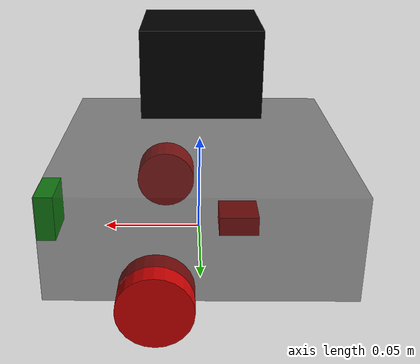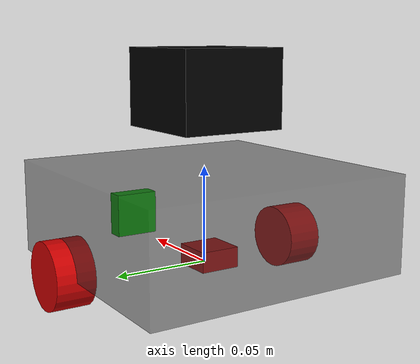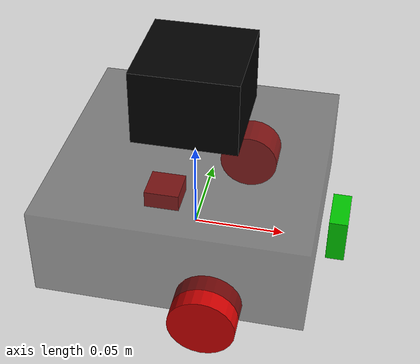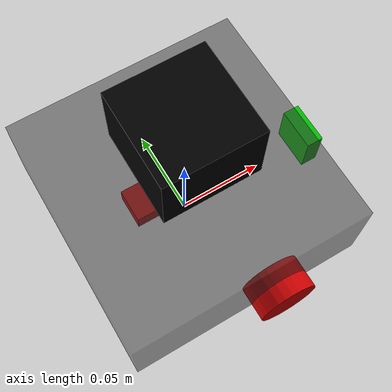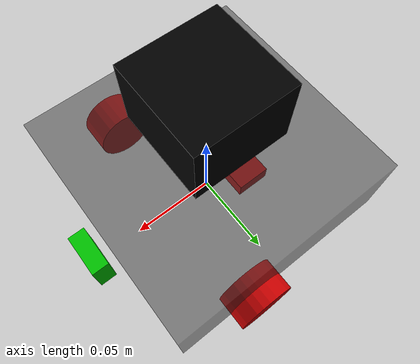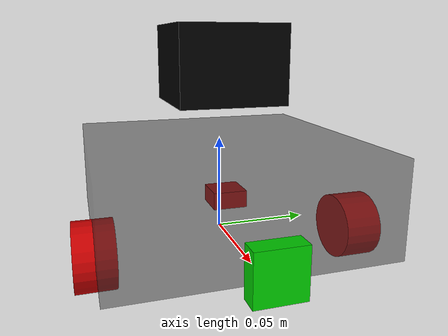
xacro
<?xml version="1.0"?>
<!-- Basic differential drive mobile base -->
<robot xmlns:xacro="http://www.ros.org/wiki/xacro" name="diffdrive_robot">
  <xacro:arg name="prefix" default="" />

  <xacro:include filename="$(find dfrobot_dc_motor_hardware)/urdf/diffbot_description.urdf.xacro" />

  <!-- Import Rviz colors -->
  <xacro:include filename="$(find dfrobot_dc_motor_hardware)/urdf/diffbot.materials.xacro" />

  <!-- Import diffbot ros2_control description -->
  <xacro:include filename="$(find dfrobot_dc_motor_hardware)/ros2_control/diffbot.ros2_control.xacro" />

  <xacro:diffbot prefix="$(arg prefix)" />

  <xacro:diffbot_ros2_control
    name="DiffBot" prefix="$(arg prefix)" />

</robot>

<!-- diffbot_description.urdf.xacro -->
<robot xmlns:xacro="http://www.ros.org/wiki/xacro">

  <xacro:macro name="diffbot" params="prefix">

  <!-- Constants for robot dimensions -->
  <xacro:property name="PI" value="3.1415926535897931"/>
  <xacro:property name="base_mass" value="0.3" /> <!-- arbitrary value for base mass -->
  <xacro:property name="base_width" value="0.14" />
  <xacro:property name="base_length" value="0.14" />
  <xacro:property name="base_height" value="0.05" />
  <xacro:property name="wheel_mass" value="0.3" /> <!-- arbitrary value for wheel mass -->
  <xacro:property name="wheel_len" value="0.020" />
  <xacro:property name="wheel_radius" value="0.0175" />
  <xacro:property name="imu_height" value="0.04" /> <!-- Height of IMU below top plate -->

  <!-- Base Link -->
  <link name="${prefix}base_link">
    <collision>
      <origin xyz="0 0 0" rpy="0 0 0"/>
      <geometry>
        <box size="${base_width} ${base_length} ${base_height}"/>
      </geometry>
    </collision>

    <visual>
      <origin xyz="0 0 ${base_height/2}" rpy="0 0 0"/>
      <geometry>
        <box size="${base_width} ${base_length} ${base_height}"/>
      </geometry>
      <material name="acrylic"/>
    </visual>

    <inertial>
      <origin xyz="0 0 0" rpy="0 0 0"/>
      <mass value="${base_mass}"/>
      <inertia
        ixx="${base_mass / 12.0 * (base_length*base_length + base_height*base_height)}" ixy="0.0" ixz="0.0"
        iyy="${base_mass / 12.0 * (base_height*base_height + base_width*base_width)}" iyz="0.0"
        izz="${base_mass / 12.0 * (base_width*base_width + base_length*base_length)}"/>
      </inertial>
    </link>

    <!-- left wheel Joint -->
    <joint name="${prefix}left_wheel_joint" type="continuous">
      <parent link="${prefix}base_link"/>
      <child link="${prefix}left_wheel"/>
      <origin xyz="0.02 ${base_width/2} 0" rpy="0 0 0"/>
      <axis xyz="0 1 0"/>
      <dynamics damping="0.2"/>
    </joint>

    <joint name="${prefix}base_footprint_joint" type="fixed">
      <parent link="${prefix}base_link"/>
      <child link="${prefix}base_footprint"/>
      <origin xyz="0 0 0" rpy="0 0 0"/>
    </joint>

    <link name="base_footprint">
    </link>

    <!-- left wheel Link -->
    <link name="${prefix}left_wheel">
      <collision>
        <origin xyz="0 0 0" rpy="${PI/2} 0 0"/>
        <geometry>
          <cylinder length="${wheel_len}" radius="${wheel_radius}"/>
        </geometry>
      </collision>

      <visual>
        <origin xyz="0 0 0" rpy="${PI/2} 0 0"/>
        <geometry>
          <cylinder length="${wheel_len}" radius="${wheel_radius}"/>
        </geometry>
        <material name="red"/>
      </visual>

      <inertial>
        <origin xyz="0 0 0" rpy="${PI/2} 0 0"/>
        <mass value="${wheel_mass}"/>
        <inertia
          ixx="${wheel_mass / 12.0 * (3*wheel_radius + wheel_len*wheel_len)}" ixy="0.0" ixz="0.0"
          iyy="${wheel_mass / 12.0 * wheel_radius*wheel_radius}" iyz="0.0"
          izz="${wheel_mass / 12.0 * wheel_radius*wheel_radius}"/>
        </inertial>
      </link>
    <!-- right wheel Joint -->
    <joint name="${prefix}right_wheel_joint" type="continuous">
      <parent link="${prefix}base_link"/>
      <child link="${prefix}right_wheel"/>
      <origin xyz="0.02 -${base_width/2} 0" rpy="0 0 0"/>
      <axis xyz="0 1 0"/>
      <dynamics damping="0.2"/>
    </joint>

    <!-- right wheel Link -->
    <link name="${prefix}right_wheel">
      <collision>
        <origin xyz="0 0 0" rpy="${PI/2} 0 0"/>
        <geometry>
          <cylinder length="${wheel_len}" radius="${wheel_radius}"/>
        </geometry>
      </collision>

      <visual>
        <origin xyz="0 0 0" rpy="${PI/2} 0 0"/>
        <geometry>
          <cylinder length="${wheel_len}" radius="${wheel_radius}"/>
        </geometry>
        <material name="red"/>
      </visual>

      <inertial>
        <origin xyz="0 0 0" rpy="${PI/2} 0 0"/>
        <mass value="${wheel_mass}"/>
        <inertia
          ixx="${wheel_mass / 12.0 * (3*wheel_radius + wheel_len*wheel_len)}" ixy="0.0" ixz="0.0"
          iyy="${wheel_mass / 12.0 * wheel_radius*wheel_radius}" iyz="0.0"
          izz="${wheel_mass / 12.0 * wheel_radius*wheel_radius}"/>
        </inertial>
      </link>

          <!-- IMU Sensor -->
    <link name="${prefix}imu_link">
      <visual>
        <origin xyz="0 0 0" rpy="0 0 0"/>
        <geometry>
          <box size="0.02 0.02 0.01"/>
        </geometry>
        <material name="red"/>
      </visual>
    </link>

    <joint name="${prefix}imu_joint" type="fixed">
      <parent link="${prefix}base_link"/>
      <child link="${prefix}imu_link"/>
      <origin xyz="-0.02 0.01 ${base_height - imu_height}" rpy="0 0 ${PI}"/>
    </joint>

          <!-- Lidar Sensor -->
    <link name="${prefix}laser">
      <visual>
        <origin xyz="0 0 0" rpy="0 0 0"/>
        <geometry>
          <box size="0.055 0.055 0.04"/>
        </geometry>
        <material name="black"/>
      </visual>
    </link>

    <joint name="${prefix}laser_joint" type="fixed">
      <parent link="${prefix}base_link"/>
      <child link="${prefix}laser"/>
      <origin xyz="0 0 ${base_height + 0.04}" rpy="0 0 ${PI}"/>
    </joint>

    <!-- Camera -->
    <link name="${prefix}camera_link">
      <visual>
        <origin xyz="0 0 0" rpy="0 0 0"/>
        <geometry>
          <box size="0.01 0.025 0.025"/>
        </geometry>
        <material name="green"/>
      </visual>
    </link>

    <joint name="${prefix}camera_joint" type="fixed">
      <parent link="${prefix}base_link"/>
      <child link="${prefix}camera_link"/>
      <origin xyz="0.08 0 ${base_height - imu_height}" rpy="0 0 0"/>
    </joint>

    <link name="${prefix}camera_link_optical"></link>

    <joint name="${prefix}camera_optical_joint" type="fixed">
      <parent link="${prefix}camera_link"/>
      <child link="${prefix}camera_link_optical"/>
      <origin xyz="0 0 0" rpy="${-PI/2} 0 ${-PI/2}"/>
    </joint>

  </xacro:macro>

</robot>

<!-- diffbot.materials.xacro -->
<!--
Copied from ROS1 example:
https://github.com/ros-simulation/gazebo_ros_demos/blob/kinetic-devel/rrbot_description/urdf/materials.xacro
-->
<robot>

  <material name="black">
    <color rgba="0.0 0.0 0.0 1.0"/>
  </material>

  <material name="blue">
    <color rgba="0.0 0.0 0.8 1.0"/>
  </material>

  <material name="green">
    <color rgba="0.0 0.8 0.0 1.0"/>
  </material>

  <material name="grey">
    <color rgba="0.2 0.2 0.2 1.0"/>
  </material>
  <material name="acrylic">
    <color rgba="0.2 0.2 0.2 0.5"/>
  </material>

  <material name="orange">
    <color rgba="${255/255} ${108/255} ${10/255} 1.0"/>
  </material>

  <material name="brown">
    <color rgba="${222/255} ${207/255} ${195/255} 1.0"/>
  </material>

  <material name="red">
    <color rgba="0.8 0.0 0.0 1.0"/>
  </material>

  <material name="white">
    <color rgba="1.0 1.0 1.0 1.0"/>
  </material>

</robot>
